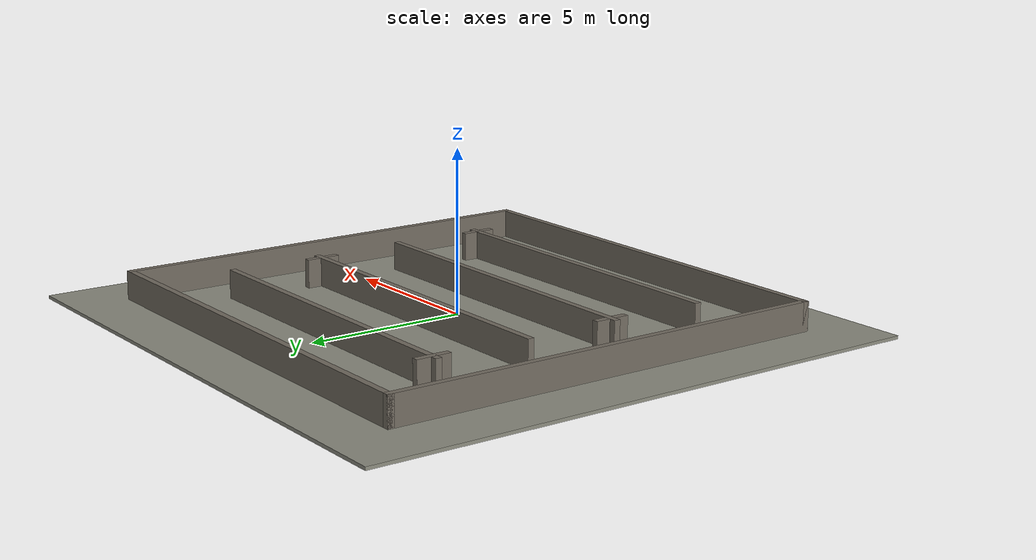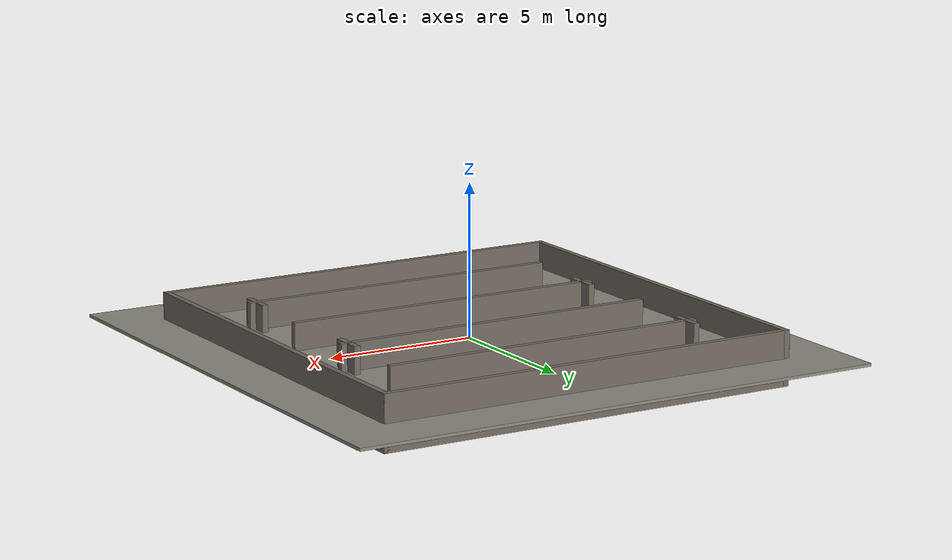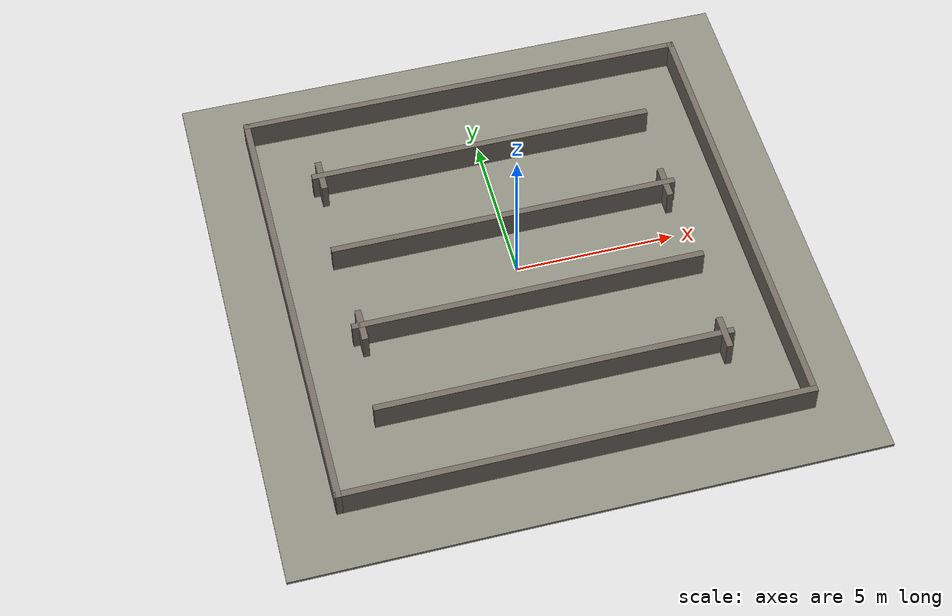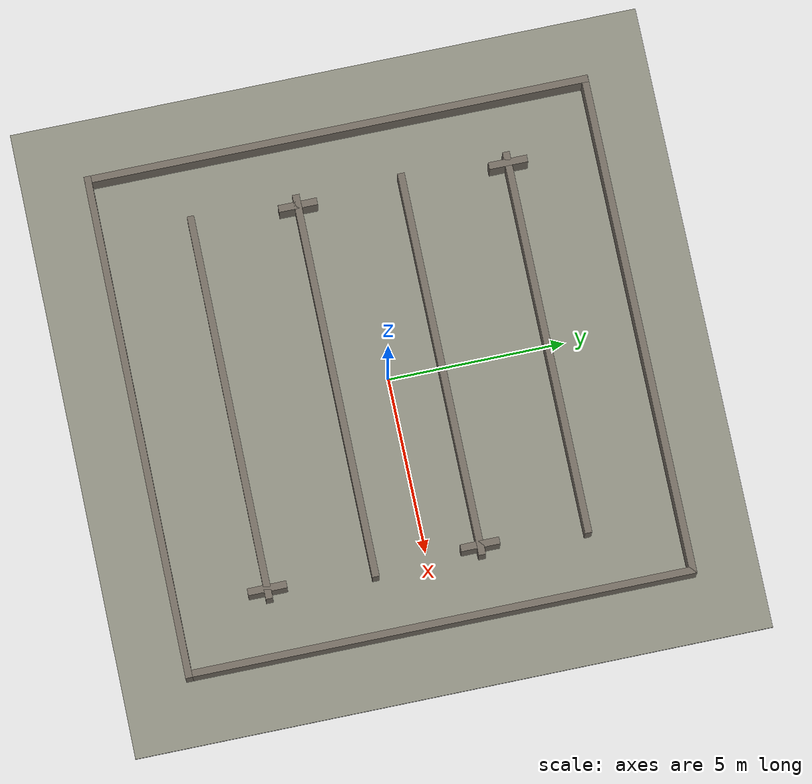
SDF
<?xml version="1.0" ?>
<sdf version="1.7">
  <world name="nav_narrow_passage">
    <physics type="ode">
      <max_step_size>0.01</max_step_size>
    </physics>

    <light name="sun" type="directional">
      <cast_shadows>true</cast_shadows>
      <pose>0 0 10 0 0 0</pose>
      <diffuse>0.8 0.8 0.8 1</diffuse>
      <specular>0.3 0.3 0.3 1</specular>
      <attenuation>
        <range>1000</range>
        <constant>0.9</constant>
        <linear>0.01</linear>
        <quadratic>0.001</quadratic>
      </attenuation>
      <direction>-0.5 0.3 -1.0</direction>
    </light>

    <model name="ground_plane">
      <static>true</static>
      <pose>0 0 -0.05 0 0 0</pose>
      <link name="link">
        <collision name="collision">
          <geometry>
            <box><size>18.0 18.0 0.1</size></box>
          </geometry>
          <surface>
            <friction>
              <ode><mu>100</mu><mu2>50</mu2></ode>
            </friction>
          </surface>
        </collision>
        <visual name="visual">
          <geometry>
            <box><size>18.0 18.0 0.1</size></box>
          </geometry>
          <material>
            <ambient>0.55 0.55 0.5 1</ambient>
            <diffuse>0.55 0.55 0.5 1</diffuse>
          </material>
        </visual>
      </link>
    </model>

    <model name="obstacle_00">
      <static>true</static>
      <pose>0.000 -7.100 0 0 0 0</pose>
      <link name="link">
        <collision name="collision">
          <geometry>
            <box><size>14.400 0.200 1.800</size></box>
          </geometry>
        </collision>
        <visual name="visual">
          <geometry>
            <box><size>14.400 0.200 1.800</size></box>
          </geometry>
          <material>
            <ambient>0.45 0.42 0.38 1</ambient>
            <diffuse>0.45 0.42 0.38 1</diffuse>
            <specular>0.1 0.1 0.1 1</specular>
          </material>
        </visual>
      </link>
    </model>

    <model name="obstacle_01">
      <static>true</static>
      <pose>0.000 7.100 0 0 0 0</pose>
      <link name="link">
        <collision name="collision">
          <geometry>
            <box><size>14.400 0.200 1.800</size></box>
          </geometry>
        </collision>
        <visual name="visual">
          <geometry>
            <box><size>14.400 0.200 1.800</size></box>
          </geometry>
          <material>
            <ambient>0.45 0.42 0.38 1</ambient>
            <diffuse>0.45 0.42 0.38 1</diffuse>
            <specular>0.1 0.1 0.1 1</specular>
          </material>
        </visual>
      </link>
    </model>

    <model name="obstacle_02">
      <static>true</static>
      <pose>-7.100 0.000 0 0 0 0</pose>
      <link name="link">
        <collision name="collision">
          <geometry>
            <box><size>0.200 14.400 1.800</size></box>
          </geometry>
        </collision>
        <visual name="visual">
          <geometry>
            <box><size>0.200 14.400 1.800</size></box>
          </geometry>
          <material>
            <ambient>0.45 0.42 0.38 1</ambient>
            <diffuse>0.45 0.42 0.38 1</diffuse>
            <specular>0.1 0.1 0.1 1</specular>
          </material>
        </visual>
      </link>
    </model>

    <model name="obstacle_03">
      <static>true</static>
      <pose>7.100 0.000 0 0 0 0</pose>
      <link name="link">
        <collision name="collision">
          <geometry>
            <box><size>0.200 14.400 1.800</size></box>
          </geometry>
        </collision>
        <visual name="visual">
          <geometry>
            <box><size>0.200 14.400 1.800</size></box>
          </geometry>
          <material>
            <ambient>0.45 0.42 0.38 1</ambient>
            <diffuse>0.45 0.42 0.38 1</diffuse>
            <specular>0.1 0.1 0.1 1</specular>
          </material>
        </visual>
      </link>
    </model>

    <model name="obstacle_04">
      <static>true</static>
      <pose>0.000 -4.500 0 0 0 0</pose>
      <link name="link">
        <collision name="collision">
          <geometry>
            <box><size>11.000 0.200 1.800</size></box>
          </geometry>
        </collision>
        <visual name="visual">
          <geometry>
            <box><size>11.000 0.200 1.800</size></box>
          </geometry>
          <material>
            <ambient>0.45 0.42 0.38 1</ambient>
            <diffuse>0.45 0.42 0.38 1</diffuse>
            <specular>0.1 0.1 0.1 1</specular>
          </material>
        </visual>
      </link>
    </model>

    <model name="obstacle_05">
      <static>true</static>
      <pose>0.000 -1.500 0 0 0 0</pose>
      <link name="link">
        <collision name="collision">
          <geometry>
            <box><size>11.000 0.200 1.800</size></box>
          </geometry>
        </collision>
        <visual name="visual">
          <geometry>
            <box><size>11.000 0.200 1.800</size></box>
          </geometry>
          <material>
            <ambient>0.45 0.42 0.38 1</ambient>
            <diffuse>0.45 0.42 0.38 1</diffuse>
            <specular>0.1 0.1 0.1 1</specular>
          </material>
        </visual>
      </link>
    </model>

    <model name="obstacle_06">
      <static>true</static>
      <pose>0.000 1.500 0 0 0 0</pose>
      <link name="link">
        <collision name="collision">
          <geometry>
            <box><size>11.000 0.200 1.800</size></box>
          </geometry>
        </collision>
        <visual name="visual">
          <geometry>
            <box><size>11.000 0.200 1.800</size></box>
          </geometry>
          <material>
            <ambient>0.45 0.42 0.38 1</ambient>
            <diffuse>0.45 0.42 0.38 1</diffuse>
            <specular>0.1 0.1 0.1 1</specular>
          </material>
        </visual>
      </link>
    </model>

    <model name="obstacle_07">
      <static>true</static>
      <pose>0.000 4.500 0 0 0 0</pose>
      <link name="link">
        <collision name="collision">
          <geometry>
            <box><size>11.000 0.200 1.800</size></box>
          </geometry>
        </collision>
        <visual name="visual">
          <geometry>
            <box><size>11.000 0.200 1.800</size></box>
          </geometry>
          <material>
            <ambient>0.45 0.42 0.38 1</ambient>
            <diffuse>0.45 0.42 0.38 1</diffuse>
            <specular>0.1 0.1 0.1 1</specular>
          </material>
        </visual>
      </link>
    </model>

    <model name="obstacle_08">
      <static>true</static>
      <pose>5.200 -4.500 0 0 0 0</pose>
      <link name="link">
        <collision name="collision">
          <geometry>
            <box><size>0.200 1.100 1.800</size></box>
          </geometry>
        </collision>
        <visual name="visual">
          <geometry>
            <box><size>0.200 1.100 1.800</size></box>
          </geometry>
          <material>
            <ambient>0.45 0.42 0.38 1</ambient>
            <diffuse>0.45 0.42 0.38 1</diffuse>
            <specular>0.1 0.1 0.1 1</specular>
          </material>
        </visual>
      </link>
    </model>

    <model name="obstacle_09">
      <static>true</static>
      <pose>-5.200 -1.500 0 0 0 0</pose>
      <link name="link">
        <collision name="collision">
          <geometry>
            <box><size>0.200 1.100 1.800</size></box>
          </geometry>
        </collision>
        <visual name="visual">
          <geometry>
            <box><size>0.200 1.100 1.800</size></box>
          </geometry>
          <material>
            <ambient>0.45 0.42 0.38 1</ambient>
            <diffuse>0.45 0.42 0.38 1</diffuse>
            <specular>0.1 0.1 0.1 1</specular>
          </material>
        </visual>
      </link>
    </model>

    <model name="obstacle_10">
      <static>true</static>
      <pose>5.200 1.500 0 0 0 0</pose>
      <link name="link">
        <collision name="collision">
          <geometry>
            <box><size>0.200 1.100 1.800</size></box>
          </geometry>
        </collision>
        <visual name="visual">
          <geometry>
            <box><size>0.200 1.100 1.800</size></box>
          </geometry>
          <material>
            <ambient>0.45 0.42 0.38 1</ambient>
            <diffuse>0.45 0.42 0.38 1</diffuse>
            <specular>0.1 0.1 0.1 1</specular>
          </material>
        </visual>
      </link>
    </model>

    <model name="obstacle_11">
      <static>true</static>
      <pose>-5.200 4.500 0 0 0 0</pose>
      <link name="link">
        <collision name="collision">
          <geometry>
            <box><size>0.200 1.100 1.800</size></box>
          </geometry>
        </collision>
        <visual name="visual">
          <geometry>
            <box><size>0.200 1.100 1.800</size></box>
          </geometry>
          <material>
            <ambient>0.45 0.42 0.38 1</ambient>
            <diffuse>0.45 0.42 0.38 1</diffuse>
            <specular>0.1 0.1 0.1 1</specular>
          </material>
        </visual>
      </link>
    </model>

  </world>
</sdf>
